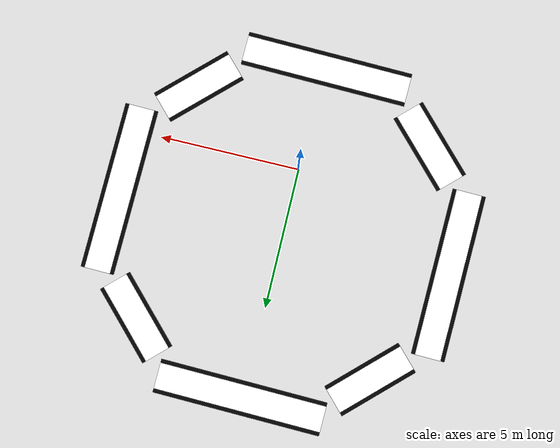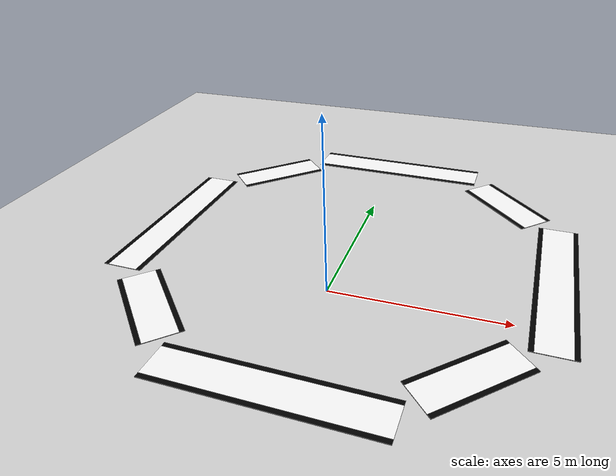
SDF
<?xml version="1.0"?>
<sdf version='1.10'>
<world name='default'>
  <light type="directional" name="my_light">
    <pose>0 0 30 0 0 0</pose>
    <diffuse>1.0 1.0 1.0 1</diffuse>
    <specular>.1 .1 .1 1</specular>
    <attenuation>
      <range>100</range>
    </attenuation>
    <direction>0 0 -1</direction>
    <cast_shadows>true</cast_shadows>
  </light>

  <physics type='ode'>
    <max_step_size>0.0040000000000000001</max_step_size>
    <real_time_factor>1</real_time_factor>
    <real_time_update_rate>250</real_time_update_rate>
  </physics>

  <plugin name='gz::sim::systems::Physics' filename='gz-sim-physics-system'/>
  <plugin name='gz::sim::systems::UserCommands' filename='gz-sim-user-commands-system'/>
  <plugin name='gz::sim::systems::SceneBroadcaster' filename='gz-sim-scene-broadcaster-system'/>
  <plugin name='gz::sim::systems::Contact' filename='gz-sim-contact-system'/>
  <plugin name='gz::sim::systems::Imu' filename='gz-sim-imu-system'/>
  <plugin name='gz::sim::systems::Magnetometer' filename='gz-sim-magnetometer-system'/>
  <plugin name='gz::sim::systems::Altimeter' filename='gz-sim-altimeter-system'/>
  <plugin name='gz::sim::systems::NavSat' filename='gz-sim-navsat-system'/>
  <plugin name='gz::sim::systems::Sensors' filename='gz-sim-sensors-system'>
    <render_engine>ogre2</render_engine>
  </plugin>

  <gui fullscreen='false'>
    <plugin name='3D View' filename='GzScene3D'>
      <gz-gui>
        <title>3D View</title>
        <property type='bool' key='showTitleBar'>0</property>
        <property type='string' key='state'>docked</property>
      </gz-gui>
      <engine>ogre2</engine>
      <scene>scene</scene>
      <ambient_light>0.60 0.60 0.60</ambient_light>
      <background_color>0.90 0.90 0.90</background_color>
      <camera_pose>-8 0 18 0 1.2 0</camera_pose>
    </plugin>

    <plugin name='World control' filename='WorldControl'>
      <gz-gui>
        <title>World control</title>
        <property type='bool' key='showTitleBar'>0</property>
        <property type='bool' key='resizable'>0</property>
        <property type='double' key='height'>72</property>
        <property type='double' key='width'>121</property>
        <property type='double' key='z'>1</property>
        <property type='string' key='state'>floating</property>
        <anchors target='3D View'>
          <line own='left' target='left'/>
          <line own='bottom' target='bottom'/>
        </anchors>
      </gz-gui>
      <play_pause>1</play_pause>
      <step>1</step>
      <start_paused>0</start_paused>
    </plugin>

    <plugin name='World stats' filename='WorldStats'>
      <gz-gui>
        <title>World stats</title>
        <property type='bool' key='showTitleBar'>0</property>
        <property type='bool' key='resizable'>0</property>
        <property type='double' key='height'>110</property>
        <property type='double' key='width'>290</property>
        <property type='double' key='z'>1</property>
        <property type='string' key='state'>floating</property>
        <anchors target='3D View'>
          <line own='right' target='right'/>
          <line own='bottom' target='bottom'/>
        </anchors>
      </gz-gui>
      <sim_time>1</sim_time>
      <real_time>1</real_time>
      <real_time_factor>1</real_time_factor>
      <iterations>1</iterations>
    </plugin>
  </gui>

  <gravity>0 0 -9.8000000000000007</gravity>
  <magnetic_field>6.0e-06 2.3e-05 -4.2e-05</magnetic_field>
  <atmosphere type='adiabatic'/>

  <spherical_coordinates>
    <surface_model>EARTH_WGS84</surface_model>
    <latitude_deg>39.79480109851339</latitude_deg>
    <longitude_deg>-84.08631702793322</longitude_deg>
    <elevation>265.2</elevation>
    <heading_deg>0</heading_deg>
  </spherical_coordinates>

  <scene>
    <grid>true</grid>
  </scene>

  <include>
    <uri>model://Raceway_1_simple</uri>
    <name>track</name>
    <pose>0 2.245 0 0 0 1.55</pose>
  </include>
</world>
</sdf>

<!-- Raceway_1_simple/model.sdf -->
<sdf version="1.10">
  <model name="Raceway_1_simple">
    <static>true</static>
    <self_collide>false</self_collide>

    <link name="track_link">
      <collision name="ground_collision">
        <pose>0 0 0 0 0 0</pose>
        <geometry>
          <plane>
            <normal>0 0 1</normal>
            <size>60 60</size>
          </plane>
        </geometry>
      </collision>

      <visual name="ground_visual">
        <pose>0 0 -0.001 0 0 0</pose>
        <geometry>
          <plane>
            <normal>0 0 1</normal>
            <size>60 60</size>
          </plane>
        </geometry>
        <material>
          <ambient>0.84 0.84 0.84 1</ambient>
          <diffuse>0.84 0.84 0.84 1</diffuse>
          <specular>0.05 0.05 0.05 1</specular>
        </material>
      </visual>

      <collision name='road_collision_1'>
        <pose>0.000 6.000 0.015 0 0 0.000000000</pose>
        <geometry>
          <box>
            <size>6.000 1.200 0.03</size>
          </box>
        </geometry>
      </collision>

      <visual name='road_border_1'>
        <pose>0.000 6.000 0.010 0 0 0.000000000</pose>
        <geometry>
          <box>
            <size>6.000 1.200 0.02</size>
          </box>
        </geometry>
        <material>
          <ambient>0 0 0 1</ambient>
          <diffuse>0 0 0 1</diffuse>
          <specular>0 0 0 1</specular>
        </material>
      </visual>

      <visual name='road_lane_1'>
        <pose>0.000 6.000 0.021 0 0 0.000000000</pose>
        <geometry>
          <box>
            <size>6.000 0.920 0.002</size>
          </box>
        </geometry>
        <material>
          <ambient>1 1 1 1</ambient>
          <diffuse>1 1 1 1</diffuse>
          <specular>0.1 0.1 0.1 1</specular>
        </material>
      </visual>

      <collision name='road_collision_2'>
        <pose>4.240 4.240 0.015 0 0 -0.785398163</pose>
        <geometry>
          <box>
            <size>3.000 1.200 0.03</size>
          </box>
        </geometry>
      </collision>

      <visual name='road_border_2'>
        <pose>4.240 4.240 0.010 0 0 -0.785398163</pose>
        <geometry>
          <box>
            <size>3.000 1.200 0.02</size>
          </box>
        </geometry>
        <material>
          <ambient>0 0 0 1</ambient>
          <diffuse>0 0 0 1</diffuse>
          <specular>0 0 0 1</specular>
        </material>
      </visual>

      <visual name='road_lane_2'>
        <pose>4.240 4.240 0.021 0 0 -0.785398163</pose>
        <geometry>
          <box>
            <size>3.000 0.920 0.002</size>
          </box>
        </geometry>
        <material>
          <ambient>1 1 1 1</ambient>
          <diffuse>1 1 1 1</diffuse>
          <specular>0.1 0.1 0.1 1</specular>
        </material>
      </visual>

      <collision name='road_collision_3'>
        <pose>6.000 0.000 0.015 0 0 1.570796327</pose>
        <geometry>
          <box>
            <size>6.000 1.200 0.03</size>
          </box>
        </geometry>
      </collision>

      <visual name='road_border_3'>
        <pose>6.000 0.000 0.010 0 0 1.570796327</pose>
        <geometry>
          <box>
            <size>6.000 1.200 0.02</size>
          </box>
        </geometry>
        <material>
          <ambient>0 0 0 1</ambient>
          <diffuse>0 0 0 1</diffuse>
          <specular>0 0 0 1</specular>
        </material>
      </visual>

      <visual name='road_lane_3'>
        <pose>6.000 0.000 0.021 0 0 1.570796327</pose>
        <geometry>
          <box>
            <size>6.000 0.920 0.002</size>
          </box>
        </geometry>
        <material>
          <ambient>1 1 1 1</ambient>
          <diffuse>1 1 1 1</diffuse>
          <specular>0.1 0.1 0.1 1</specular>
        </material>
      </visual>

      <collision name='road_collision_4'>
        <pose>4.240 -4.240 0.015 0 0 0.785398163</pose>
        <geometry>
          <box>
            <size>3.000 1.200 0.03</size>
          </box>
        </geometry>
      </collision>

      <visual name='road_border_4'>
        <pose>4.240 -4.240 0.010 0 0 0.785398163</pose>
        <geometry>
          <box>
            <size>3.000 1.200 0.02</size>
          </box>
        </geometry>
        <material>
          <ambient>0 0 0 1</ambient>
          <diffuse>0 0 0 1</diffuse>
          <specular>0 0 0 1</specular>
        </material>
      </visual>

      <visual name='road_lane_4'>
        <pose>4.240 -4.240 0.021 0 0 0.785398163</pose>
        <geometry>
          <box>
            <size>3.000 0.920 0.002</size>
          </box>
        </geometry>
        <material>
          <ambient>1 1 1 1</ambient>
          <diffuse>1 1 1 1</diffuse>
          <specular>0.1 0.1 0.1 1</specular>
        </material>
      </visual>

      <collision name='road_collision_5'>
        <pose>0.000 -6.000 0.015 0 0 0.000000000</pose>
        <geometry>
          <box>
            <size>6.000 1.200 0.03</size>
          </box>
        </geometry>
      </collision>

      <visual name='road_border_5'>
        <pose>0.000 -6.000 0.010 0 0 0.000000000</pose>
        <geometry>
          <box>
            <size>6.000 1.200 0.02</size>
          </box>
        </geometry>
        <material>
          <ambient>0 0 0 1</ambient>
          <diffuse>0 0 0 1</diffuse>
          <specular>0 0 0 1</specular>
        </material>
      </visual>

      <visual name='road_lane_5'>
        <pose>0.000 -6.000 0.021 0 0 0.000000000</pose>
        <geometry>
          <box>
            <size>6.000 0.920 0.002</size>
          </box>
        </geometry>
        <material>
          <ambient>1 1 1 1</ambient>
          <diffuse>1 1 1 1</diffuse>
          <specular>0.1 0.1 0.1 1</specular>
        </material>
      </visual>

      <collision name='road_collision_6'>
        <pose>-4.240 -4.240 0.015 0 0 -0.785398163</pose>
        <geometry>
          <box>
            <size>3.000 1.200 0.03</size>
          </box>
        </geometry>
      </collision>

      <visual name='road_border_6'>
        <pose>-4.240 -4.240 0.010 0 0 -0.785398163</pose>
        <geometry>
          <box>
            <size>3.000 1.200 0.02</size>
          </box>
        </geometry>
        <material>
          <ambient>0 0 0 1</ambient>
          <diffuse>0 0 0 1</diffuse>
          <specular>0 0 0 1</specular>
        </material>
      </visual>

      <visual name='road_lane_6'>
        <pose>-4.240 -4.240 0.021 0 0 -0.785398163</pose>
        <geometry>
          <box>
            <size>3.000 0.920 0.002</size>
          </box>
        </geometry>
        <material>
          <ambient>1 1 1 1</ambient>
          <diffuse>1 1 1 1</diffuse>
          <specular>0.1 0.1 0.1 1</specular>
        </material>
      </visual>

      <collision name='road_collision_7'>
        <pose>-6.000 0.000 0.015 0 0 1.570796327</pose>
        <geometry>
          <box>
            <size>6.000 1.200 0.03</size>
          </box>
        </geometry>
      </collision>

      <visual name='road_border_7'>
        <pose>-6.000 0.000 0.010 0 0 1.570796327</pose>
        <geometry>
          <box>
            <size>6.000 1.200 0.02</size>
          </box>
        </geometry>
        <material>
          <ambient>0 0 0 1</ambient>
          <diffuse>0 0 0 1</diffuse>
          <specular>0 0 0 1</specular>
        </material>
      </visual>

      <visual name='road_lane_7'>
        <pose>-6.000 0.000 0.021 0 0 1.570796327</pose>
        <geometry>
          <box>
            <size>6.000 0.920 0.002</size>
          </box>
        </geometry>
        <material>
          <ambient>1 1 1 1</ambient>
          <diffuse>1 1 1 1</diffuse>
          <specular>0.1 0.1 0.1 1</specular>
        </material>
      </visual>

      <collision name='road_collision_8'>
        <pose>-4.240 4.240 0.015 0 0 0.785398163</pose>
        <geometry>
          <box>
            <size>3.000 1.200 0.03</size>
          </box>
        </geometry>
      </collision>

      <visual name='road_border_8'>
        <pose>-4.240 4.240 0.010 0 0 0.785398163</pose>
        <geometry>
          <box>
            <size>3.000 1.200 0.02</size>
          </box>
        </geometry>
        <material>
          <ambient>0 0 0 1</ambient>
          <diffuse>0 0 0 1</diffuse>
          <specular>0 0 0 1</specular>
        </material>
      </visual>

      <visual name='road_lane_8'>
        <pose>-4.240 4.240 0.021 0 0 0.785398163</pose>
        <geometry>
          <box>
            <size>3.000 0.920 0.002</size>
          </box>
        </geometry>
        <material>
          <ambient>1 1 1 1</ambient>
          <diffuse>1 1 1 1</diffuse>
          <specular>0.1 0.1 0.1 1</specular>
        </material>
      </visual>

    </link>
  </model>
</sdf>
